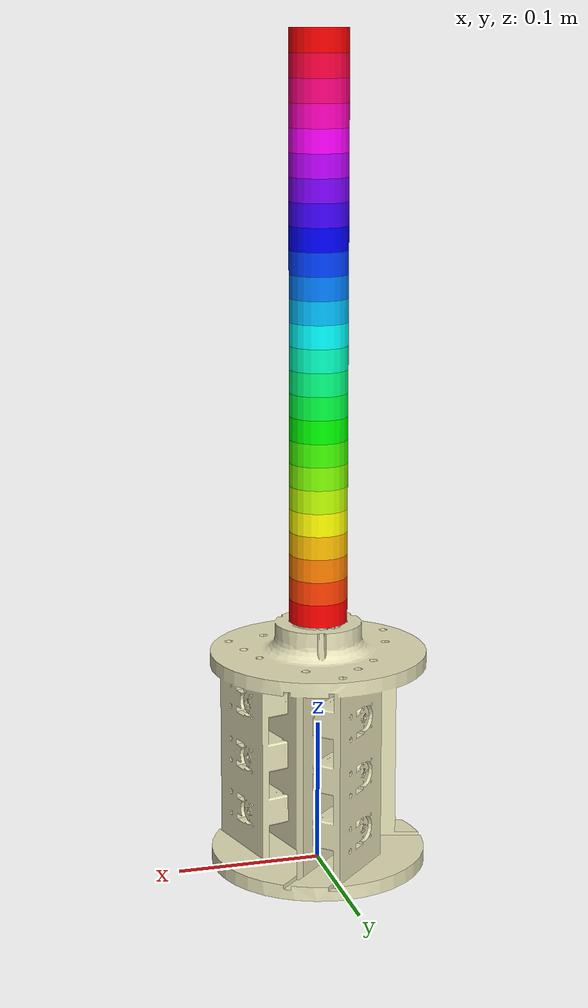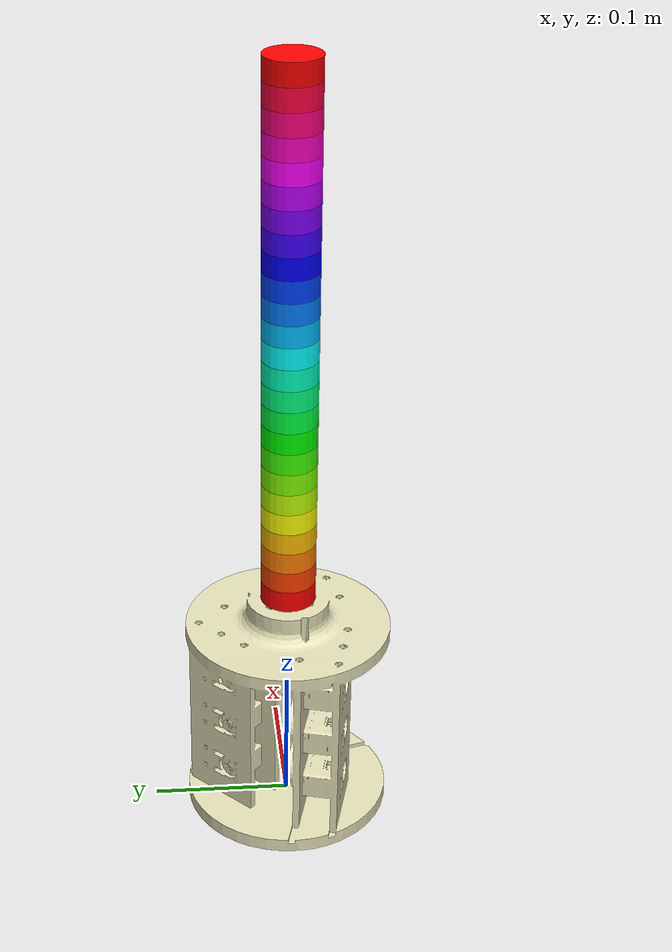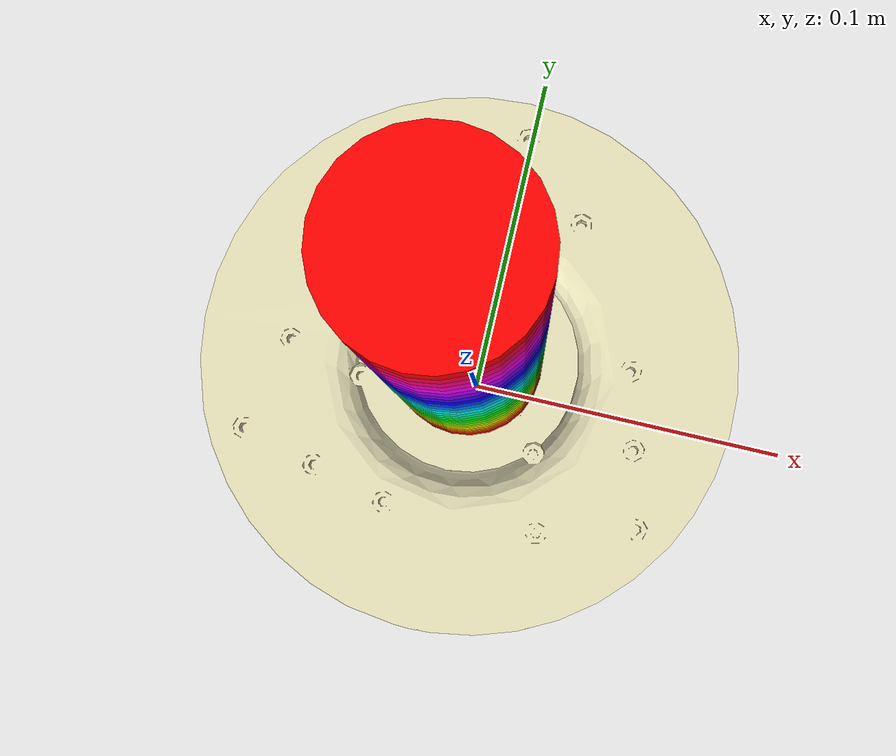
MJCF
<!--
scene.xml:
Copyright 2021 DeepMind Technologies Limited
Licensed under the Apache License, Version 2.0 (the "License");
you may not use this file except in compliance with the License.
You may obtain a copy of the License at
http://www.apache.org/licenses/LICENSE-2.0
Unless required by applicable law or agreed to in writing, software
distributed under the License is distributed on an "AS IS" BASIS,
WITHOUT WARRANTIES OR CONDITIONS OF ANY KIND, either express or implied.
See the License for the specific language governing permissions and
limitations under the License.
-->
<?xml version="1.0"?>
<mujoco model="TDCR">
<!-- Mass decreases linearly from bottom to top to reduce tip wobble after motion. -->
  <visual>
    <global offwidth="1280" offheight="720"/>
  </visual>

  <include file="scene.xml"/>

  <option timestep="0.002" gravity="0 0 -9.81"/>

  <asset>
    <mesh name="base_mesh" file="base.stl"/>
  </asset>

  <default>
    <geom density="25" friction="0.8 0.1 0.1" rgba="0.6 0.6 0.9 1"/>
    <joint damping="0.1" armature="0.01" limited="false"/>
    <site  size="0.002" rgba="1 0.4 0.4 1"/>
  </default>

  <worldbody>
    <camera name="camera1" pos="0.000 -0.900 0.500" quat="0.77334 0.63399 -0.00000 -0.00000" fovy="60"/>
    <camera name="camera2" pos="0.000 0.900 0.500" quat="-0.00000 0.00000 0.63399 0.77334" fovy="60"/>
    <camera name="camera3" pos="0.900 0.000 0.500" quat="0.54684 0.44830 0.44830 0.54684" fovy="60"/>
    <camera name="camera4" pos="-0.900 0.000 0.500" quat="-0.54684 -0.44830 0.44830 0.54684" fovy="60"/>
    <camera name="camera5" pos="0.636 0.636 0.500" quat="0.29595 0.24262 0.58573 0.71448" fovy="60"/>
    <camera name="camera6" pos="-0.636 0.636 0.500" quat="0.29595 0.24262 -0.58573 -0.71448" fovy="60"/>
    <camera name="camera7" pos="-0.636 -0.636 0.500" quat="0.71448 0.58573 -0.24262 -0.29595" fovy="60"/>
    <camera name="camera8" pos="0.636 -0.636 0.500" quat="0.71448 0.58573 0.24262 0.29595" fovy="60"/>

    <body name="base" pos="0 0 0.174">
      <!-- Light yellow base; 174 mm above ground. Put the offset in the body pos, not the geom. -->
      <geom type="mesh" mesh="base_mesh" rgba="0.902 0.886 0.725 1.0" contype="0" conaffinity="0"  group="1"/>
      <site name="b00" pos=" 0.0125  0         -0.0085"/>
      <site name="b01" pos="-0.00625  0.010825 -0.0085"/>
      <site name="b02" pos="-0.00625 -0.010825 -0.0085"/>

      <!-- ===== DISC0 (fixed) ===== -->
      <!-- Ball joint here is optional; disc0 is effectively immobile. Under tendon actuation, only the upper section is actuated. -->
      <!-- In the geom, size controls half-height (half thickness). Adjust the joint position via the body's pos. -->
      <body name="disc0" pos="0 0 0.00895">
        <joint name="ball0" type="ball"/>
        <geom density="25.000" type="cylinder" size="0.02 0.008" contype="0" conaffinity="0" rgba="1.000 0.000 0.000 1.0" group="1"/>
        <site name="s00" pos=" 0.0125  0         0"/>
        <site name="s01" pos="-0.00625  0.010825 0"/>
        <site name="s02" pos="-0.00625 -0.010825 0"/>

        <!-- ===== DISC1 ===== -->
        <body name="disc1" pos="0 0 0.016">
          <joint name="ball1" type="ball"/>
          <geom density="24.167" type="cylinder" size="0.02 0.008" contype="0" conaffinity="0" rgba="1.000 0.250 0.000 1.0" group="1"/>
          <site name="s10" pos=" 0.0125  0         0"/>
          <site name="s11" pos="-0.00625  0.010825 0"/>
          <site name="s12" pos="-0.00625 -0.010825 0"/>

          <!-- ===== DISC2 ===== -->
          <body name="disc2" pos="0 0 0.016">
            <joint name="ball2" type="ball"/>
            <geom density="23.333" type="cylinder" size="0.02 0.008" contype="0" conaffinity="0" rgba="1.000 0.500 0.000 1.0" group="1"/>
            <site name="s20" pos=" 0.0125  0         0"/>
            <site name="s21" pos="-0.00625  0.010825 0"/>
            <site name="s22" pos="-0.00625 -0.010825 0"/>

            <!-- ===== DISC3 ===== -->
            <body name="disc3" pos="0 0 0.016">
              <joint name="ball3" type="ball"/>
              <geom density="22.500" type="cylinder" size="0.02 0.008" contype="0" conaffinity="0" rgba="1.000 0.750 0.000 1.0" group="1"/>
              <site name="s30" pos=" 0.0125  0         0"/>
              <site name="s31" pos="-0.00625  0.010825 0"/>
              <site name="s32" pos="-0.00625 -0.010825 0"/>

              <!-- ===== DISC4 ===== -->
              <body name="disc4" pos="0 0 0.016">
                <joint name="ball4" type="ball"/>
                <geom density="21.667" type="cylinder" size="0.02 0.008" contype="0" conaffinity="0" rgba="1.000 1.000 0.000 1.0" group="1"/>
                <site name="s40" pos=" 0.0125  0         0"/>
                <site name="s41" pos="-0.00625  0.010825 0"/>
                <site name="s42" pos="-0.00625 -0.010825 0"/>

                <!-- ===== DISC5 (section 2) ===== -->
                <body name="disc5" pos="0 0 0.016">
                  <joint name="ball5" type="ball"/>
                  <geom density="20.833" type="cylinder" size="0.02 0.008" contype="0" conaffinity="0" rgba="0.750 1.000 0.000 1.0" group="1"/>
                  <site name="s50" pos=" 0.0125  0         0"/>
                  <site name="s51" pos="-0.00625  0.010825 0"/>
                  <site name="s52" pos="-0.00625 -0.010825 0"/>

                  <!-- ===== DISC6 ===== -->
                  <body name="disc6" pos="0 0 0.016">
                    <joint name="ball6" type="ball"/>
                    <geom density="20.000" type="cylinder" size="0.02 0.008" contype="0" conaffinity="0" rgba="0.500 1.000 0.000 1.0" group="1"/>
                    <site name="s60" pos=" 0.0125  0         0"/>
                    <site name="s61" pos="-0.00625  0.010825 0"/>
                    <site name="s62" pos="-0.00625 -0.010825 0"/>

                    <!-- ===== DISC7 ===== -->
                    <body name="disc7" pos="0 0 0.016">
                      <joint name="ball7" type="ball"/>
                      <geom density="19.167" type="cylinder" size="0.02 0.008" contype="0" conaffinity="0" rgba="0.250 1.000 0.000 1.0" group="1"/>
                      <site name="s70" pos=" 0.0125  0         0"/>
                      <site name="s71" pos="-0.00625  0.010825 0"/>
                      <site name="s72" pos="-0.00625 -0.010825 0"/>

                      <!-- ===== DISC8 ===== -->
                      <body name="disc8" pos="0 0 0.016">
                        <joint name="ball8" type="ball"/>
                        <geom density="18.333" type="cylinder" size="0.02 0.008" contype="0" conaffinity="0" rgba="0.000 1.000 0.000 1.0" group="1"/>
                        <site name="s80" pos=" 0.0125  0         0"/>
                        <site name="s81" pos="-0.00625  0.010825 0"/>
                        <site name="s82" pos="-0.00625 -0.010825 0"/>

                        <!-- ===== DISC9 (TIP) ===== -->
                        <body name="disc9" pos="0 0 0.016">
                          <joint name="ball9" type="ball"/>
                          <geom density="17.500" type="cylinder" size="0.02 0.008" contype="0" conaffinity="0" rgba="0.000 1.000 0.250 1.0" group="1"/>
                          <site name="s90" pos=" 0.0125  0         0"/>
                          <site name="s91" pos="-0.00625  0.010825 0"/>
                          <site name="s92" pos="-0.00625 -0.010825 0"/>

                          <!-- ===== DISC10 (section 3) ===== -->
                          <body name="disc10" pos="0 0 0.016">
                            <joint name="ball10" type="ball"/>
                            <geom density="16.667" type="cylinder" size="0.02 0.008" contype="0" conaffinity="0" rgba="0.000 1.000 0.500 1.0" group="1"/>
                            <site name="s100" pos=" 0.0125  0         0"/>
                            <site name="s101" pos="-0.00625  0.010825 0"/>
                            <site name="s102" pos="-0.00625 -0.010825 0"/>

                            <!-- ===== DISC11 (TIP) ===== -->
                            <body name="disc11" pos="0 0 0.016">
                              <joint name="ball11" type="ball"/>
                              <geom density="15.833" type="cylinder" size="0.02 0.008" contype="0" conaffinity="0" rgba="0.000 1.000 0.750 1.0" group="1"/>
                              <site name="s110" pos=" 0.0125  0         0"/>
                              <site name="s111" pos="-0.00625  0.010825 0"/>
                              <site name="s112" pos="-0.00625 -0.010825 0"/>

                              <!-- ===== DISC12 (TIP) ===== -->
                              <body name="disc12" pos="0 0 0.016">
                                <joint name="ball12" type="ball"/>
                                <geom density="15.000" type="cylinder" size="0.02 0.008" contype="0" conaffinity="0" rgba="0.000 1.000 1.000 1.0" group="1"/>
                                <site name="s120" pos=" 0.0125  0         0"/>
                                <site name="s121" pos="-0.00625  0.010825 0"/>
                                <site name="s122" pos="-0.00625 -0.010825 0"/>

                                <!-- ===== DISC13 (TIP) ===== -->
                                <body name="disc13" pos="0 0 0.016">
                                  <joint name="ball13" type="ball"/>
                                  <geom density="14.167" type="cylinder" size="0.02 0.008" contype="0" conaffinity="0" rgba="0.000 0.750 1.000 1.0" group="1"/>
                                  <site name="s130" pos=" 0.0125  0         0"/>
                                  <site name="s131" pos="-0.00625  0.010825 0"/>
                                  <site name="s132" pos="-0.00625 -0.010825 0"/>

                                  <!-- ===== DISC14 (TIP) ===== -->
                                  <body name="disc14" pos="0 0 0.016">
                                    <joint name="ball14" type="ball"/>
                                    <geom density="13.333" type="cylinder" size="0.02 0.008" contype="0" conaffinity="0" rgba="0.000 0.500 1.000 1.0" group="1"/>
                                    <site name="s140" pos=" 0.0125  0         0"/>
                                    <site name="s141" pos="-0.00625  0.010825 0"/>
                                    <site name="s142" pos="-0.00625 -0.010825 0"/>

                                    <!-- ===== DISC15 (section 4) ===== -->
                                    <body name="disc15" pos="0 0 0.016">
                                      <joint name="ball15" type="ball"/>
                                      <geom density="12.500" type="cylinder" size="0.02 0.008" contype="0" conaffinity="0" rgba="0.000 0.250 1.000 1.0" group="1"/>
                                      <site name="s150" pos=" 0.0125  0         0"/>
                                      <site name="s151" pos="-0.00625  0.010825 0"/>
                                      <site name="s152" pos="-0.00625 -0.010825 0"/>

                                      <!-- ===== DISC16 (TIP) ===== -->
                                      <body name="disc16" pos="0 0 0.016">
                                        <joint name="ball16" type="ball"/>
                                        <geom density="11.667" type="cylinder" size="0.02 0.008" contype="0" conaffinity="0" rgba="0.000 0.000 1.000 1.0" group="1"/>
                                        <site name="s160" pos=" 0.0125  0         0"/>
                                        <site name="s161" pos="-0.00625  0.010825 0"/>
                                        <site name="s162" pos="-0.00625 -0.010825 0"/>

                                        <!-- ===== DISC17 (TIP) ===== -->
                                        <body name="disc17" pos="0 0 0.016">
                                          <joint name="ball17" type="ball"/>
                                          <geom density="10.833" type="cylinder" size="0.02 0.008" contype="0" conaffinity="0" rgba="0.250 0.000 1.000 1.0" group="1"/>
                                          <site name="s170" pos=" 0.0125  0         0"/>
                                          <site name="s171" pos="-0.00625  0.010825 0"/>
                                          <site name="s172" pos="-0.00625 -0.010825 0"/>

                                          <!-- ===== DISC18 (TIP) ===== -->
                                          <body name="disc18" pos="0 0 0.016">
                                            <joint name="ball18" type="ball"/>
                                            <geom density="10.000" type="cylinder" size="0.02 0.008" contype="0" conaffinity="0" rgba="0.500 0.000 1.000 1.0" group="1"/>
                                            <site name="s180" pos=" 0.0125  0         0"/>
                                            <site name="s181" pos="-0.00625  0.010825 0"/>
                                            <site name="s182" pos="-0.00625 -0.010825 0"/>

                                            <!-- ===== DISC19 (TIP) ===== -->
                                            <body name="disc19" pos="0 0 0.016">
                                              <joint name="ball19" type="ball"/>
                                              <geom density="9.167" type="cylinder" size="0.02 0.008" contype="0" conaffinity="0" rgba="0.750 0.000 1.000 1.0" group="1"/>
                                              <site name="s190" pos=" 0.0125  0         0"/>
                                              <site name="s191" pos="-0.00625  0.010825 0"/>
                                              <site name="s192" pos="-0.00625 -0.010825 0"/>

                                              <!-- ===== DISC20 (section 5) ===== -->
                                              <body name="disc20" pos="0 0 0.016">
                                                <joint name="ball20" type="ball"/>
                                                <geom density="8.333" type="cylinder" size="0.02 0.008" contype="0" conaffinity="0" rgba="1.000 0.000 1.000 1.0" group="1"/>
                                                <site name="s200" pos=" 0.0125  0         0"/>
                                                <site name="s201" pos="-0.00625  0.010825 0"/>
                                                <site name="s202" pos="-0.00625 -0.010825 0"/>

                                                <!-- ===== DISC21 (TIP) ===== -->
                                                <body name="disc21" pos="0 0 0.016">
                                                  <joint name="ball21" type="ball"/>
                                                  <geom density="7.500" type="cylinder" size="0.02 0.008" contype="0" conaffinity="0" rgba="1.000 0.000 0.750 1.0" group="1"/>
                                                  <site name="s210" pos=" 0.0125  0         0"/>
                                                  <site name="s211" pos="-0.00625  0.010825 0"/>
                                                  <site name="s212" pos="-0.00625 -0.010825 0"/>

                                                  <!-- ===== DISC22 (TIP) ===== -->
                                                  <body name="disc22" pos="0 0 0.016">
                                                    <joint name="ball22" type="ball"/>
                                                    <geom density="6.667" type="cylinder" size="0.02 0.008" contype="0" conaffinity="0" rgba="1.000 0.000 0.500 1.0" group="1"/>
                                                    <site name="s220" pos=" 0.0125  0         0"/>
                                                    <site name="s221" pos="-0.00625  0.010825 0"/>
                                                    <site name="s222" pos="-0.00625 -0.010825 0"/>

                                                    <!-- ===== DISC23 (TIP) ===== -->
                                                    <body name="disc23" pos="0 0 0.016">
                                                      <joint name="ball23" type="ball"/>
                                                      <geom density="5.833" type="cylinder" size="0.02 0.008" contype="0" conaffinity="0" rgba="1.000 0.000 0.250 1.0" group="1"/>
                                                      <site name="s230" pos=" 0.0125  0         0"/>
                                                      <site name="s231" pos="-0.00625  0.010825 0"/>
                                                      <site name="s232" pos="-0.00625 -0.010825 0"/>

                                                      <!-- ===== DISC24 (TIP) ===== -->
                                                      <body name="disc24" pos="0 0 0.016">
                                                        <joint name="ball24" type="ball"/>
                                                        <geom density="5.000" type="cylinder" size="0.02 0.008" contype="0" conaffinity="0" rgba="1.000 0.000 0.000 1.0" group="1"/>
                                                        <site name="s240" pos=" 0.0125  0         0"/>
                                                        <site name="s241" pos="-0.00625  0.010825 0"/>
                                                        <site name="s242" pos="-0.00625 -0.010825 0"/>

                                                      </body><!-- disc24 end -->
                                                    </body><!-- disc23 end -->
                                                  </body><!-- disc22 end -->
                                                </body><!-- disc21 end -->
                                              </body><!-- disc20 end -->
                                            </body><!-- disc19 end -->
                                          </body><!-- disc18 end -->
                                        </body><!-- disc17 end -->
                                      </body><!-- disc16 end -->
                                    </body><!-- disc15 end -->
                                  </body><!-- disc14 end -->
                                </body><!-- disc13 end -->
                              </body><!-- disc12 end -->
                            </body><!-- disc11 end -->
                          </body><!-- disc10 end -->
                        </body><!-- disc9 end -->
                      </body><!-- disc8 end -->
                    </body><!-- disc7 end -->
                  </body><!-- disc6 end -->
                </body><!-- disc5 end -->
              </body><!-- disc4 end -->
            </body><!-- disc3 end -->
          </body><!-- disc2 end -->
        </body><!-- disc1 end -->
      </body><!-- disc0 end -->
    </body><!-- base end -->
  </worldbody>

  <tendon>
    <spatial name="tendon1">
      <site site="b00"/><site site="s00"/><site site="s10"/><site site="s20"/><site site="s30"/><site site="s40"/>
    </spatial>
    <spatial name="tendon2">
      <site site="b01"/><site site="s01"/><site site="s11"/><site site="s21"/><site site="s31"/><site site="s41"/>
    </spatial>
    <spatial name="tendon3">
      <site site="b02"/><site site="s02"/><site site="s12"/><site site="s22"/><site site="s32"/><site site="s42"/>
    </spatial>

    <spatial name="tendon4">
      <site site="s40"/><site site="s50"/><site site="s60"/><site site="s70"/><site site="s80"/><site site="s90"/>
    </spatial>
    <spatial name="tendon5">
      <site site="s41"/><site site="s51"/><site site="s61"/><site site="s71"/><site site="s81"/><site site="s91"/>
    </spatial>
    <spatial name="tendon6">
      <site site="s42"/><site site="s52"/><site site="s62"/><site site="s72"/><site site="s82"/><site site="s92"/>
    </spatial>

    <spatial name="tendon7">
      <site site="s90"/><site site="s100"/><site site="s110"/><site site="s120"/><site site="s130"/><site site="s140"/>
    </spatial>
    <spatial name="tendon8">
      <site site="s91"/><site site="s101"/><site site="s111"/><site site="s121"/><site site="s131"/><site site="s141"/>
    </spatial>
    <spatial name="tendon9">
      <site site="s92"/><site site="s102"/><site site="s112"/><site site="s122"/><site site="s132"/><site site="s142"/>
    </spatial>

    <spatial name="tendon10">
      <site site="s140"/><site site="s150"/><site site="s160"/><site site="s170"/><site site="s180"/><site site="s190"/>
    </spatial>
    <spatial name="tendon11">
      <site site="s141"/><site site="s151"/><site site="s161"/><site site="s171"/><site site="s181"/><site site="s191"/>
    </spatial>
    <spatial name="tendon12">
      <site site="s142"/><site site="s152"/><site site="s162"/><site site="s172"/><site site="s182"/><site site="s192"/>
    </spatial>

    <spatial name="tendon13">
      <site site="s190"/><site site="s200"/><site site="s210"/><site site="s220"/><site site="s230"/><site site="s240"/>
    </spatial>
    <spatial name="tendon14">
      <site site="s191"/><site site="s201"/><site site="s211"/><site site="s221"/><site site="s231"/><site site="s241"/>
    </spatial>
    <spatial name="tendon15">
      <site site="s192"/><site site="s202"/><site site="s212"/><site site="s222"/><site site="s232"/><site site="s242"/>
    </spatial>

  </tendon>

  <actuator>
    <!-- 1 motors control discs 0-4 -->
    <position name="motor1" tendon="tendon1" kp="700" ctrlrange="0 0.04"/>
    <position name="motor2" tendon="tendon2" kp="700" ctrlrange="0 0.04"/>
    <position name="motor3" tendon="tendon3" kp="700" ctrlrange="0 0.04"/>

    <!-- 2 motors control discs 5-9 -->
    <position name="motor4" tendon="tendon4" kp="700" ctrlrange="0 0.04"/>
    <position name="motor5" tendon="tendon5" kp="700" ctrlrange="0 0.04"/>
    <position name="motor6" tendon="tendon6" kp="700" ctrlrange="0 0.04"/>

    <!-- 3 motors control discs 10-14 -->
    <position name="motor7" tendon="tendon7" kp="700" ctrlrange="0 0.04"/>
    <position name="motor8" tendon="tendon8" kp="700" ctrlrange="0 0.04"/>
    <position name="motor9" tendon="tendon9" kp="700" ctrlrange="0 0.04"/>

    <!-- 4 motors control discs 15-19 -->
    <position name="motor10" tendon="tendon10" kp="700" ctrlrange="0 0.04"/>
    <position name="motor11" tendon="tendon11" kp="700" ctrlrange="0 0.04"/>
    <position name="motor12" tendon="tendon12" kp="700" ctrlrange="0 0.04"/>

    <!-- 5 motors control discs 20-24 -->
    <position name="motor13" tendon="tendon13" kp="700" ctrlrange="0 0.04"/>
    <position name="motor14" tendon="tendon14" kp="700" ctrlrange="0 0.04"/>
    <position name="motor15" tendon="tendon15" kp="700" ctrlrange="0 0.04"/>

  </actuator>

</mujoco>

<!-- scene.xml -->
<mujoco>
  <compiler meshdir="asset" texturedir="asset"/>

  <statistic meansize=".05"/>

  <visual>
    <rgba haze="0.15 0.25 0.35 1"/>
    <quality shadowsize="4096"/>
    <map stiffness="700" shadowscale="0.5" fogstart="1" fogend="15" zfar="40" haze="1"/>
  </visual>

  <asset>
    <texture type="skybox" builtin="gradient" rgb1="0.3 0.5 0.7" rgb2="0 0 0" width="512" height="512"/>
    <texture name="texplane" type="2d" builtin="checker" rgb1=".2 .3 .4" rgb2=".1 0.15 0.2"
      width="512" height="512" mark="cross" markrgb=".8 .8 .8"/>

    <material name="matplane" reflectance="0.3" texture="texplane" texrepeat="10 10" texuniform="true"/>
  </asset>

  <worldbody>
    <light diffuse=".4 .4 .4" specular="0.1 0.1 0.1" pos="0 0 2.0" dir="0 0 -1" castshadow="false"/>
    <light directional="true" diffuse=".8 .8 .8" specular="0.2 0.2 0.2" pos="0 0 4" dir="0 0 -1"/>

  </worldbody>
</mujoco>
